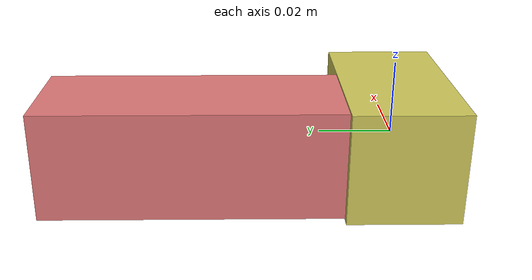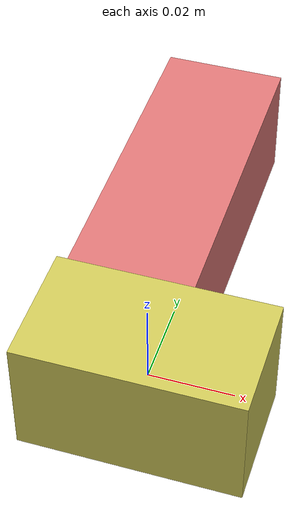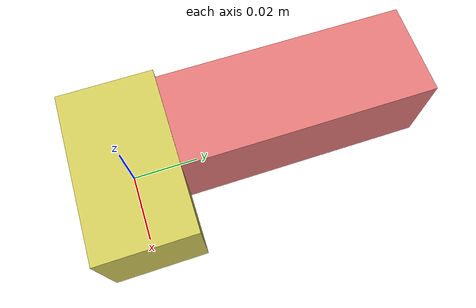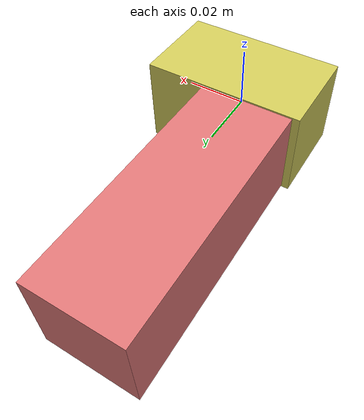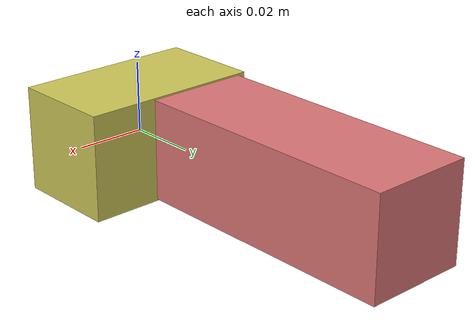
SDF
<sdf version="1.4"><world name="default"><model name="object0"><link name="link1"><pose>0 0 0 0 0 0</pose><inertial><pose>0 0 0 0 0 0</pose><mass>0.028357942029454037</mass><inertia><ixx>4.253691304418105e-06</ixx><ixy>0</ixy><iyy>8.643960365116021e-06</iyy><ixz>0</ixz><iyz>0</iyz><izz>8.643960365116021e-06</izz></inertia></inertial><visual name="link1_visual"><pose>0 0  0 0 0 0</pose><geometry><box><size>0.05251470746195192 0.03 0.03</size></box></geometry><material><diffuse>0.8149611056439994 0.7879211812029634 0.34954502263185994 1</diffuse></material></visual><collision><pose>0 0  0 0 0 0</pose><geometry><box><size>0.05251470746195192 0.03 0.03</size></box></geometry></collision></link><link name="link2"><pose>-0.00887581360219086 0.052729657347226816 0 0 0 0</pose><inertial><pose>0 0 0 0 0 0</pose><mass>0.045286132103343514</mass><inertia><ixx>2.971539220259437e-05</ixx><ixy>0</ixy><iyy>6.570262999326754e-06</iyy><ixz>0</ixz><iyz>0</iyz><izz>2.993804901876914e-05</izz></inertia></inertial><visual name="link2_visual"><pose>0 0  0 0 0 0</pose><geometry><box><size>0.03 0.08386320759878428 0.028999999999999998</size></box></geometry><material><diffuse>0.8721575392056364 0.46434402261913493 0.46233080828754314 1</diffuse></material></visual><collision><pose>0 0  0 0 0 0</pose><geometry><box><size>0.03 0.08386320759878428 0.028999999999999998</size></box></geometry></collision></link><joint name="link_joint_0" type="fixed"><parent>link1</parent><child>link2</child><pose>0 0 0 0 0 0</pose><axis><xyz>0 0 1</xyz></axis></joint></model></world></sdf>
